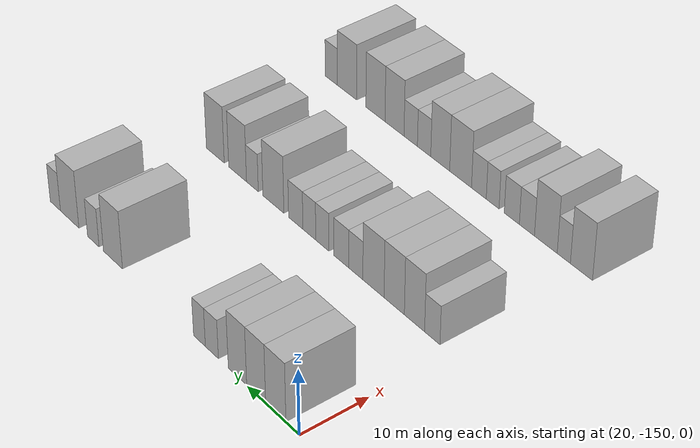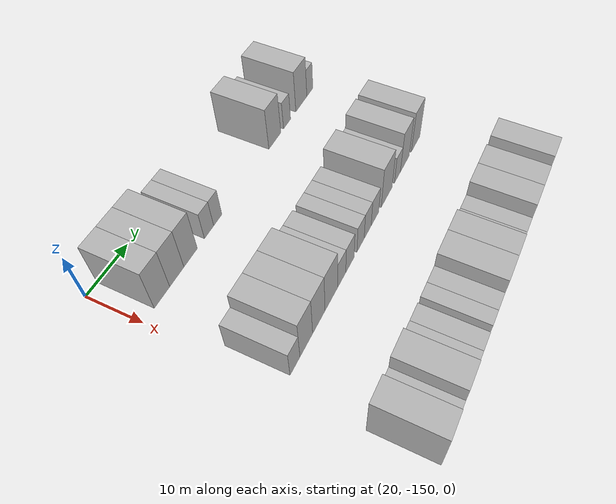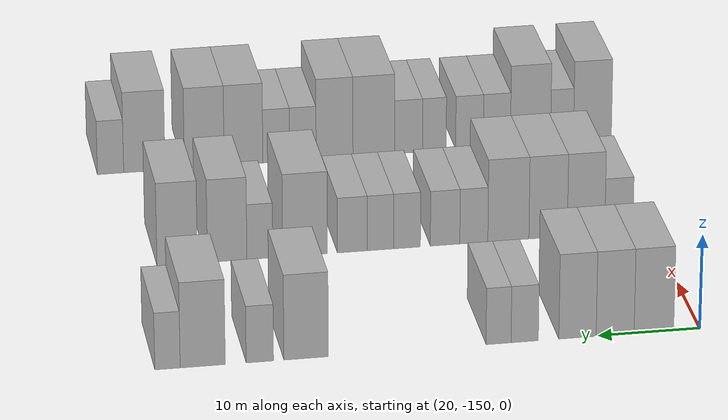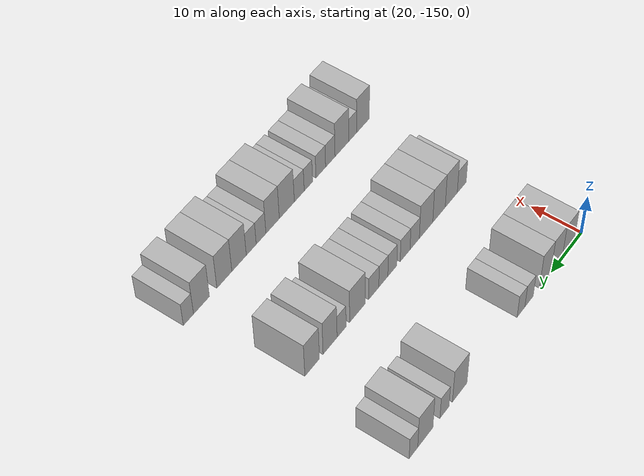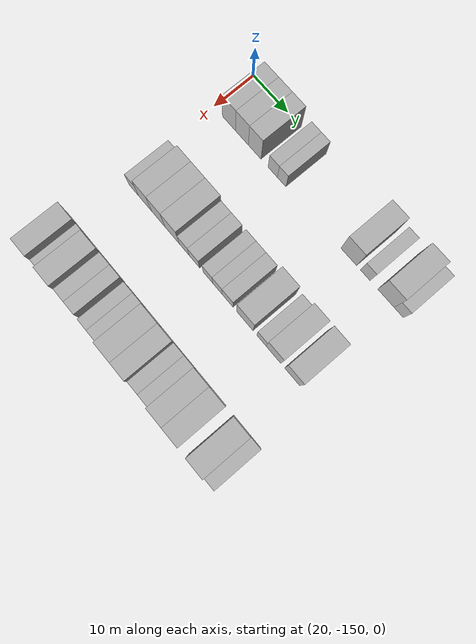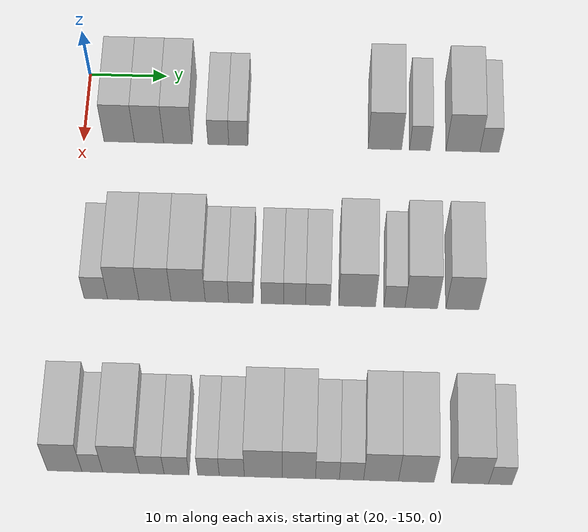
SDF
<sdf version="1.6">
 <world name="default">
  <model name="building_25">
   <static>1</static>
   <pose>25.0000 -145.4583 0 0.000000 0.000000 0.000000</pose>
   <link name="link">
    <pose>0 0 4.50 0 0 0</pose>
    <collision name="collision"><geometry><box><size>10.0000 3.8874 9.0000</size></box></geometry></collision>
    <visual name="visual">
     <cast_shadows>0</cast_shadows>
     <geometry><box><size>10.0000 3.8874 9.0000</size></box></geometry>
     <material>
      <script>
       <uri>model://HANNAS_wall/materials/scripts</uri>
       <uri>model://HANNAS_wall/materials/textures</uri>
       <name>vrc/HANNAS_wall</name>
      </script>
     </material>
    </visual>
   </link>
  </model>
  <model name="building_26">
   <static>1</static>
   <pose>25.0000 -141.6594 0 0.000000 0.000000 0.000000</pose>
   <link name="link">
    <pose>0 0 4.50 0 0 0</pose>
    <collision name="collision"><geometry><box><size>10.0000 3.7105 9.0000</size></box></geometry></collision>
    <visual name="visual">
     <cast_shadows>0</cast_shadows>
     <geometry><box><size>10.0000 3.7105 9.0000</size></box></geometry>
     <material>
      <script>
       <uri>model://HANNAS_wall/materials/scripts</uri>
       <uri>model://HANNAS_wall/materials/textures</uri>
       <name>vrc/HANNAS_wall</name>
      </script>
     </material>
    </visual>
   </link>
  </model>
  <model name="building_27">
   <static>1</static>
   <pose>25.0000 -137.9797 0 0.000000 0.000000 0.000000</pose>
   <link name="link">
    <pose>0 0 4.50 0 0 0</pose>
    <collision name="collision"><geometry><box><size>10.0000 3.6488 9.0000</size></box></geometry></collision>
    <visual name="visual">
     <cast_shadows>0</cast_shadows>
     <geometry><box><size>10.0000 3.6488 9.0000</size></box></geometry>
     <material>
      <script>
       <uri>model://HANNAS_wall/materials/scripts</uri>
       <uri>model://HANNAS_wall/materials/textures</uri>
       <name>vrc/HANNAS_wall</name>
      </script>
     </material>
    </visual>
   </link>
  </model>
  <model name="building_28">
   <static>1</static>
   <pose>25.0000 -132.8272 0 0.000000 0.000000 0.000000</pose>
   <link name="link">
    <pose>0 0 3.00 0 0 0</pose>
    <collision name="collision"><geometry><box><size>10.0000 2.6561 6.0000</size></box></geometry></collision>
    <visual name="visual">
     <cast_shadows>0</cast_shadows>
     <geometry><box><size>10.0000 2.6561 6.0000</size></box></geometry>
     <material>
      <script>
       <uri>model://HANNAS_wall/materials/scripts</uri>
       <uri>model://HANNAS_wall/materials/textures</uri>
       <name>vrc/HANNAS_wall</name>
      </script>
     </material>
    </visual>
   </link>
  </model>
  <model name="building_29">
   <static>1</static>
   <pose>25.0000 -130.2861 0 0.000000 0.000000 0.000000</pose>
   <link name="link">
    <pose>0 0 3.00 0 0 0</pose>
    <collision name="collision"><geometry><box><size>10.0000 2.4261 6.0000</size></box></geometry></collision>
    <visual name="visual">
     <cast_shadows>0</cast_shadows>
     <geometry><box><size>10.0000 2.4261 6.0000</size></box></geometry>
     <material>
      <script>
       <uri>model://HANNAS_wall/materials/scripts</uri>
       <uri>model://HANNAS_wall/materials/textures</uri>
       <name>vrc/HANNAS_wall</name>
      </script>
     </material>
    </visual>
   </link>
  </model>
  <model name="building_30">
   <static>1</static>
   <pose>25.0000 -111.6694 0 0.000000 0.000000 0.000000</pose>
   <link name="link">
    <pose>0 0 4.50 0 0 0</pose>
    <collision name="collision"><geometry><box><size>10.0000 4.2691 9.0000</size></box></geometry></collision>
    <visual name="visual">
     <cast_shadows>0</cast_shadows>
     <geometry><box><size>10.0000 4.2691 9.0000</size></box></geometry>
     <material>
      <script>
       <uri>model://HANNAS_wall/materials/scripts</uri>
       <uri>model://HANNAS_wall/materials/textures</uri>
       <name>vrc/HANNAS_wall</name>
      </script>
     </material>
    </visual>
   </link>
  </model>
  <model name="building_31">
   <static>1</static>
   <pose>25.0000 -107.2250 0 0.000000 0.000000 0.000000</pose>
   <link name="link">
    <pose>0 0 3.00 0 0 0</pose>
    <collision name="collision"><geometry><box><size>10.0000 2.6196 6.0000</size></box></geometry></collision>
    <visual name="visual">
     <cast_shadows>0</cast_shadows>
     <geometry><box><size>10.0000 2.6196 6.0000</size></box></geometry>
     <material>
      <script>
       <uri>model://HANNAS_wall/materials/scripts</uri>
       <uri>model://HANNAS_wall/materials/textures</uri>
       <name>vrc/HANNAS_wall</name>
      </script>
     </material>
    </visual>
   </link>
  </model>
  <model name="building_32">
   <static>1</static>
   <pose>25.0000 -101.7582 0 0.000000 0.000000 0.000000</pose>
   <link name="link">
    <pose>0 0 4.50 0 0 0</pose>
    <collision name="collision"><geometry><box><size>10.0000 4.3139 9.0000</size></box></geometry></collision>
    <visual name="visual">
     <cast_shadows>0</cast_shadows>
     <geometry><box><size>10.0000 4.3139 9.0000</size></box></geometry>
     <material>
      <script>
       <uri>model://HANNAS_wall/materials/scripts</uri>
       <uri>model://HANNAS_wall/materials/textures</uri>
       <name>vrc/HANNAS_wall</name>
      </script>
     </material>
    </visual>
   </link>
  </model>
  <model name="building_33">
   <static>1</static>
   <pose>25.0000 -98.3903 0 0.000000 0.000000 0.000000</pose>
   <link name="link">
    <pose>0 0 3.00 0 0 0</pose>
    <collision name="collision"><geometry><box><size>10.0000 2.4220 6.0000</size></box></geometry></collision>
    <visual name="visual">
     <cast_shadows>0</cast_shadows>
     <geometry><box><size>10.0000 2.4220 6.0000</size></box></geometry>
     <material>
      <script>
       <uri>model://HANNAS_wall/materials/scripts</uri>
       <uri>model://HANNAS_wall/materials/textures</uri>
       <name>vrc/HANNAS_wall</name>
      </script>
     </material>
    </visual>
   </link>
  </model>
  <model name="building_150">
   <static>1</static>
   <pose>47.0000 -146.6364 0 0.000000 0.000000 0.000000</pose>
   <link name="link">
    <pose>0 0 3.00 0 0 0</pose>
    <collision name="collision"><geometry><box><size>10.0000 2.8636 6.0000</size></box></geometry></collision>
    <visual name="visual">
     <cast_shadows>0</cast_shadows>
     <geometry><box><size>10.0000 2.8636 6.0000</size></box></geometry>
     <material>
      <script>
       <uri>model://HANNAS_wall/materials/scripts</uri>
       <uri>model://HANNAS_wall/materials/textures</uri>
       <name>vrc/HANNAS_wall</name>
      </script>
     </material>
    </visual>
   </link>
  </model>
  <model name="building_151">
   <static>1</static>
   <pose>47.0000 -143.2948 0 0.000000 0.000000 0.000000</pose>
   <link name="link">
    <pose>0 0 4.50 0 0 0</pose>
    <collision name="collision"><geometry><box><size>10.0000 3.8197 9.0000</size></box></geometry></collision>
    <visual name="visual">
     <cast_shadows>0</cast_shadows>
     <geometry><box><size>10.0000 3.8197 9.0000</size></box></geometry>
     <material>
      <script>
       <uri>model://HANNAS_wall/materials/scripts</uri>
       <uri>model://HANNAS_wall/materials/textures</uri>
       <name>vrc/HANNAS_wall</name>
      </script>
     </material>
    </visual>
   </link>
  </model>
  <model name="building_152">
   <static>1</static>
   <pose>47.0000 -139.4377 0 0.000000 0.000000 0.000000</pose>
   <link name="link">
    <pose>0 0 4.50 0 0 0</pose>
    <collision name="collision"><geometry><box><size>10.0000 3.8944 9.0000</size></box></geometry></collision>
    <visual name="visual">
     <cast_shadows>0</cast_shadows>
     <geometry><box><size>10.0000 3.8944 9.0000</size></box></geometry>
     <material>
      <script>
       <uri>model://HANNAS_wall/materials/scripts</uri>
       <uri>model://HANNAS_wall/materials/textures</uri>
       <name>vrc/HANNAS_wall</name>
      </script>
     </material>
    </visual>
   </link>
  </model>
  <model name="building_153">
   <static>1</static>
   <pose>47.0000 -135.4099 0 0.000000 0.000000 0.000000</pose>
   <link name="link">
    <pose>0 0 4.50 0 0 0</pose>
    <collision name="collision"><geometry><box><size>10.0000 4.1613 9.0000</size></box></geometry></collision>
    <visual name="visual">
     <cast_shadows>0</cast_shadows>
     <geometry><box><size>10.0000 4.1613 9.0000</size></box></geometry>
     <material>
      <script>
       <uri>model://HANNAS_wall/materials/scripts</uri>
       <uri>model://HANNAS_wall/materials/textures</uri>
       <name>vrc/HANNAS_wall</name>
      </script>
     </material>
    </visual>
   </link>
  </model>
  <model name="building_154">
   <static>1</static>
   <pose>47.0000 -131.9122 0 0.000000 0.000000 0.000000</pose>
   <link name="link">
    <pose>0 0 3.00 0 0 0</pose>
    <collision name="collision"><geometry><box><size>10.0000 2.8342 6.0000</size></box></geometry></collision>
    <visual name="visual">
     <cast_shadows>0</cast_shadows>
     <geometry><box><size>10.0000 2.8342 6.0000</size></box></geometry>
     <material>
      <script>
       <uri>model://HANNAS_wall/materials/scripts</uri>
       <uri>model://HANNAS_wall/materials/textures</uri>
       <name>vrc/HANNAS_wall</name>
      </script>
     </material>
    </visual>
   </link>
  </model>
  <model name="building_155">
   <static>1</static>
   <pose>47.0000 -129.0062 0 0.000000 0.000000 0.000000</pose>
   <link name="link">
    <pose>0 0 3.00 0 0 0</pose>
    <collision name="collision"><geometry><box><size>10.0000 2.9776 6.0000</size></box></geometry></collision>
    <visual name="visual">
     <cast_shadows>0</cast_shadows>
     <geometry><box><size>10.0000 2.9776 6.0000</size></box></geometry>
     <material>
      <script>
       <uri>model://HANNAS_wall/materials/scripts</uri>
       <uri>model://HANNAS_wall/materials/textures</uri>
       <name>vrc/HANNAS_wall</name>
      </script>
     </material>
    </visual>
   </link>
  </model>
  <model name="building_156">
   <static>1</static>
   <pose>47.0000 -125.1750 0 0.000000 0.000000 0.000000</pose>
   <link name="link">
    <pose>0 0 3.00 0 0 0</pose>
    <collision name="collision"><geometry><box><size>10.0000 2.6848 6.0000</size></box></geometry></collision>
    <visual name="visual">
     <cast_shadows>0</cast_shadows>
     <geometry><box><size>10.0000 2.6848 6.0000</size></box></geometry>
     <material>
      <script>
       <uri>model://HANNAS_wall/materials/scripts</uri>
       <uri>model://HANNAS_wall/materials/textures</uri>
       <name>vrc/HANNAS_wall</name>
      </script>
     </material>
    </visual>
   </link>
  </model>
  <model name="building_157">
   <static>1</static>
   <pose>47.0000 -122.4982 0 0.000000 0.000000 0.000000</pose>
   <link name="link">
    <pose>0 0 3.00 0 0 0</pose>
    <collision name="collision"><geometry><box><size>10.0000 2.6690 6.0000</size></box></geometry></collision>
    <visual name="visual">
     <cast_shadows>0</cast_shadows>
     <geometry><box><size>10.0000 2.6690 6.0000</size></box></geometry>
     <material>
      <script>
       <uri>model://HANNAS_wall/materials/scripts</uri>
       <uri>model://HANNAS_wall/materials/textures</uri>
       <name>vrc/HANNAS_wall</name>
      </script>
     </material>
    </visual>
   </link>
  </model>
  <model name="building_158">
   <static>1</static>
   <pose>47.0000 -119.6649 0 0.000000 0.000000 0.000000</pose>
   <link name="link">
    <pose>0 0 3.00 0 0 0</pose>
    <collision name="collision"><geometry><box><size>10.0000 2.9975 6.0000</size></box></geometry></collision>
    <visual name="visual">
     <cast_shadows>0</cast_shadows>
     <geometry><box><size>10.0000 2.9975 6.0000</size></box></geometry>
     <material>
      <script>
       <uri>model://HANNAS_wall/materials/scripts</uri>
       <uri>model://HANNAS_wall/materials/textures</uri>
       <name>vrc/HANNAS_wall</name>
      </script>
     </material>
    </visual>
   </link>
  </model>
  <model name="building_159">
   <static>1</static>
   <pose>47.0000 -114.9239 0 0.000000 0.000000 0.000000</pose>
   <link name="link">
    <pose>0 0 4.50 0 0 0</pose>
    <collision name="collision"><geometry><box><size>10.0000 4.4846 9.0000</size></box></geometry></collision>
    <visual name="visual">
     <cast_shadows>0</cast_shadows>
     <geometry><box><size>10.0000 4.4846 9.0000</size></box></geometry>
     <material>
      <script>
       <uri>model://HANNAS_wall/materials/scripts</uri>
       <uri>model://HANNAS_wall/materials/textures</uri>
       <name>vrc/HANNAS_wall</name>
      </script>
     </material>
    </visual>
   </link>
  </model>
  <model name="building_160">
   <static>1</static>
   <pose>47.0000 -110.3972 0 0.000000 0.000000 0.000000</pose>
   <link name="link">
    <pose>0 0 3.00 0 0 0</pose>
    <collision name="collision"><geometry><box><size>10.0000 2.5687 6.0000</size></box></geometry></collision>
    <visual name="visual">
     <cast_shadows>0</cast_shadows>
     <geometry><box><size>10.0000 2.5687 6.0000</size></box></geometry>
     <material>
      <script>
       <uri>model://HANNAS_wall/materials/scripts</uri>
       <uri>model://HANNAS_wall/materials/textures</uri>
       <name>vrc/HANNAS_wall</name>
      </script>
     </material>
    </visual>
   </link>
  </model>
  <model name="building_161">
   <static>1</static>
   <pose>47.0000 -107.1453 0 0.000000 0.000000 0.000000</pose>
   <link name="link">
    <pose>0 0 4.50 0 0 0</pose>
    <collision name="collision"><geometry><box><size>10.0000 3.9351 9.0000</size></box></geometry></collision>
    <visual name="visual">
     <cast_shadows>0</cast_shadows>
     <geometry><box><size>10.0000 3.9351 9.0000</size></box></geometry>
     <material>
      <script>
       <uri>model://HANNAS_wall/materials/scripts</uri>
       <uri>model://HANNAS_wall/materials/textures</uri>
       <name>vrc/HANNAS_wall</name>
      </script>
     </material>
    </visual>
   </link>
  </model>
  <model name="building_162">
   <static>1</static>
   <pose>47.0000 -102.1686 0 0.000000 0.000000 0.000000</pose>
   <link name="link">
    <pose>0 0 4.50 0 0 0</pose>
    <collision name="collision"><geometry><box><size>10.0000 4.0183 9.0000</size></box></geometry></collision>
    <visual name="visual">
     <cast_shadows>0</cast_shadows>
     <geometry><box><size>10.0000 4.0183 9.0000</size></box></geometry>
     <material>
      <script>
       <uri>model://HANNAS_wall/materials/scripts</uri>
       <uri>model://HANNAS_wall/materials/textures</uri>
       <name>vrc/HANNAS_wall</name>
      </script>
     </material>
    </visual>
   </link>
  </model>
  <model name="building_280">
   <static>1</static>
   <pose>69.0000 -148.4467 0 0.000000 0.000000 0.000000</pose>
   <link name="link">
    <pose>0 0 4.50 0 0 0</pose>
    <collision name="collision"><geometry><box><size>10.0000 4.0081 9.0000</size></box></geometry></collision>
    <visual name="visual">
     <cast_shadows>0</cast_shadows>
     <geometry><box><size>10.0000 4.0081 9.0000</size></box></geometry>
     <material>
      <script>
       <uri>model://HANNAS_wall/materials/scripts</uri>
       <uri>model://HANNAS_wall/materials/textures</uri>
       <name>vrc/HANNAS_wall</name>
      </script>
     </material>
    </visual>
   </link>
  </model>
  <model name="building_281">
   <static>1</static>
   <pose>69.0000 -145.2342 0 0.000000 0.000000 0.000000</pose>
   <link name="link">
    <pose>0 0 3.00 0 0 0</pose>
    <collision name="collision"><geometry><box><size>10.0000 2.4169 6.0000</size></box></geometry></collision>
    <visual name="visual">
     <cast_shadows>0</cast_shadows>
     <geometry><box><size>10.0000 2.4169 6.0000</size></box></geometry>
     <material>
      <script>
       <uri>model://HANNAS_wall/materials/scripts</uri>
       <uri>model://HANNAS_wall/materials/textures</uri>
       <name>vrc/HANNAS_wall</name>
      </script>
     </material>
    </visual>
   </link>
  </model>
  <model name="building_282">
   <static>1</static>
   <pose>69.0000 -141.9087 0 0.000000 0.000000 0.000000</pose>
   <link name="link">
    <pose>0 0 4.50 0 0 0</pose>
    <collision name="collision"><geometry><box><size>10.0000 4.2341 9.0000</size></box></geometry></collision>
    <visual name="visual">
     <cast_shadows>0</cast_shadows>
     <geometry><box><size>10.0000 4.2341 9.0000</size></box></geometry>
     <material>
      <script>
       <uri>model://HANNAS_wall/materials/scripts</uri>
       <uri>model://HANNAS_wall/materials/textures</uri>
       <name>vrc/HANNAS_wall</name>
      </script>
     </material>
    </visual>
   </link>
  </model>
  <model name="building_283">
   <static>1</static>
   <pose>69.0000 -138.3596 0 0.000000 0.000000 0.000000</pose>
   <link name="link">
    <pose>0 0 3.00 0 0 0</pose>
    <collision name="collision"><geometry><box><size>10.0000 2.8641 6.0000</size></box></geometry></collision>
    <visual name="visual">
     <cast_shadows>0</cast_shadows>
     <geometry><box><size>10.0000 2.8641 6.0000</size></box></geometry>
     <material>
      <script>
       <uri>model://HANNAS_wall/materials/scripts</uri>
       <uri>model://HANNAS_wall/materials/textures</uri>
       <name>vrc/HANNAS_wall</name>
      </script>
     </material>
    </visual>
   </link>
  </model>
  <model name="building_284">
   <static>1</static>
   <pose>69.0000 -135.4821 0 0.000000 0.000000 0.000000</pose>
   <link name="link">
    <pose>0 0 3.00 0 0 0</pose>
    <collision name="collision"><geometry><box><size>10.0000 2.8909 6.0000</size></box></geometry></collision>
    <visual name="visual">
     <cast_shadows>0</cast_shadows>
     <geometry><box><size>10.0000 2.8909 6.0000</size></box></geometry>
     <material>
      <script>
       <uri>model://HANNAS_wall/materials/scripts</uri>
       <uri>model://HANNAS_wall/materials/textures</uri>
       <name>vrc/HANNAS_wall</name>
      </script>
     </material>
    </visual>
   </link>
  </model>
  <model name="building_285">
   <static>1</static>
   <pose>69.0000 -131.7908 0 0.000000 0.000000 0.000000</pose>
   <link name="link">
    <pose>0 0 3.00 0 0 0</pose>
    <collision name="collision"><geometry><box><size>10.0000 2.4917 6.0000</size></box></geometry></collision>
    <visual name="visual">
     <cast_shadows>0</cast_shadows>
     <geometry><box><size>10.0000 2.4917 6.0000</size></box></geometry>
     <material>
      <script>
       <uri>model://HANNAS_wall/materials/scripts</uri>
       <uri>model://HANNAS_wall/materials/textures</uri>
       <name>vrc/HANNAS_wall</name>
      </script>
     </material>
    </visual>
   </link>
  </model>
  <model name="building_286">
   <static>1</static>
   <pose>69.0000 -129.0964 0 0.000000 0.000000 0.000000</pose>
   <link name="link">
    <pose>0 0 3.00 0 0 0</pose>
    <collision name="collision"><geometry><box><size>10.0000 2.8971 6.0000</size></box></geometry></collision>
    <visual name="visual">
     <cast_shadows>0</cast_shadows>
     <geometry><box><size>10.0000 2.8971 6.0000</size></box></geometry>
     <material>
      <script>
       <uri>model://HANNAS_wall/materials/scripts</uri>
       <uri>model://HANNAS_wall/materials/textures</uri>
       <name>vrc/HANNAS_wall</name>
      </script>
     </material>
    </visual>
   </link>
  </model>
  <model name="building_287">
   <static>1</static>
   <pose>69.0000 -125.4621 0 0.000000 0.000000 0.000000</pose>
   <link name="link">
    <pose>0 0 4.50 0 0 0</pose>
    <collision name="collision"><geometry><box><size>10.0000 4.3713 9.0000</size></box></geometry></collision>
    <visual name="visual">
     <cast_shadows>0</cast_shadows>
     <geometry><box><size>10.0000 4.3713 9.0000</size></box></geometry>
     <material>
      <script>
       <uri>model://HANNAS_wall/materials/scripts</uri>
       <uri>model://HANNAS_wall/materials/textures</uri>
       <name>vrc/HANNAS_wall</name>
      </script>
     </material>
    </visual>
   </link>
  </model>
  <model name="building_288">
   <static>1</static>
   <pose>69.0000 -121.3544 0 0.000000 0.000000 0.000000</pose>
   <link name="link">
    <pose>0 0 4.50 0 0 0</pose>
    <collision name="collision"><geometry><box><size>10.0000 3.8441 9.0000</size></box></geometry></collision>
    <visual name="visual">
     <cast_shadows>0</cast_shadows>
     <geometry><box><size>10.0000 3.8441 9.0000</size></box></geometry>
     <material>
      <script>
       <uri>model://HANNAS_wall/materials/scripts</uri>
       <uri>model://HANNAS_wall/materials/textures</uri>
       <name>vrc/HANNAS_wall</name>
      </script>
     </material>
    </visual>
   </link>
  </model>
  <model name="building_289">
   <static>1</static>
   <pose>69.0000 -118.0551 0 0.000000 0.000000 0.000000</pose>
   <link name="link">
    <pose>0 0 3.00 0 0 0</pose>
    <collision name="collision"><geometry><box><size>10.0000 2.7546 6.0000</size></box></geometry></collision>
    <visual name="visual">
     <cast_shadows>0</cast_shadows>
     <geometry><box><size>10.0000 2.7546 6.0000</size></box></geometry>
     <material>
      <script>
       <uri>model://HANNAS_wall/materials/scripts</uri>
       <uri>model://HANNAS_wall/materials/textures</uri>
       <name>vrc/HANNAS_wall</name>
      </script>
     </material>
    </visual>
   </link>
  </model>
  <model name="building_290">
   <static>1</static>
   <pose>69.0000 -115.2849 0 0.000000 0.000000 0.000000</pose>
   <link name="link">
    <pose>0 0 3.00 0 0 0</pose>
    <collision name="collision"><geometry><box><size>10.0000 2.7859 6.0000</size></box></geometry></collision>
    <visual name="visual">
     <cast_shadows>0</cast_shadows>
     <geometry><box><size>10.0000 2.7859 6.0000</size></box></geometry>
     <material>
      <script>
       <uri>model://HANNAS_wall/materials/scripts</uri>
       <uri>model://HANNAS_wall/materials/textures</uri>
       <name>vrc/HANNAS_wall</name>
      </script>
     </material>
    </visual>
   </link>
  </model>
  <model name="building_291">
   <static>1</static>
   <pose>69.0000 -111.8842 0 0.000000 0.000000 0.000000</pose>
   <link name="link">
    <pose>0 0 4.50 0 0 0</pose>
    <collision name="collision"><geometry><box><size>10.0000 4.0155 9.0000</size></box></geometry></collision>
    <visual name="visual">
     <cast_shadows>0</cast_shadows>
     <geometry><box><size>10.0000 4.0155 9.0000</size></box></geometry>
     <material>
      <script>
       <uri>model://HANNAS_wall/materials/scripts</uri>
       <uri>model://HANNAS_wall/materials/textures</uri>
       <name>vrc/HANNAS_wall</name>
      </script>
     </material>
    </visual>
   </link>
  </model>
  <model name="building_292">
   <static>1</static>
   <pose>69.0000 -107.8208 0 0.000000 0.000000 0.000000</pose>
   <link name="link">
    <pose>0 0 4.50 0 0 0</pose>
    <collision name="collision"><geometry><box><size>10.0000 4.1114 9.0000</size></box></geometry></collision>
    <visual name="visual">
     <cast_shadows>0</cast_shadows>
     <geometry><box><size>10.0000 4.1114 9.0000</size></box></geometry>
     <material>
      <script>
       <uri>model://HANNAS_wall/materials/scripts</uri>
       <uri>model://HANNAS_wall/materials/textures</uri>
       <name>vrc/HANNAS_wall</name>
      </script>
     </material>
    </visual>
   </link>
  </model>
  <model name="building_293">
   <static>1</static>
   <pose>69.0000 -101.6268 0 0.000000 0.000000 0.000000</pose>
   <link name="link">
    <pose>0 0 4.50 0 0 0</pose>
    <collision name="collision"><geometry><box><size>10.0000 4.2766 9.0000</size></box></geometry></collision>
    <visual name="visual">
     <cast_shadows>0</cast_shadows>
     <geometry><box><size>10.0000 4.2766 9.0000</size></box></geometry>
     <material>
      <script>
       <uri>model://HANNAS_wall/materials/scripts</uri>
       <uri>model://HANNAS_wall/materials/textures</uri>
       <name>vrc/HANNAS_wall</name>
      </script>
     </material>
    </visual>
   </link>
  </model>
  <model name="building_294">
   <static>1</static>
   <pose>69.0000 -98.1366 0 0.000000 0.000000 0.000000</pose>
   <link name="link">
    <pose>0 0 3.00 0 0 0</pose>
    <collision name="collision"><geometry><box><size>10.0000 2.7037 6.0000</size></box></geometry></collision>
    <visual name="visual">
     <cast_shadows>0</cast_shadows>
     <geometry><box><size>10.0000 2.7037 6.0000</size></box></geometry>
     <material>
      <script>
       <uri>model://HANNAS_wall/materials/scripts</uri>
       <uri>model://HANNAS_wall/materials/textures</uri>
       <name>vrc/HANNAS_wall</name>
      </script>
     </material>
    </visual>
   </link>
  </model>
 </world>
</sdf>
